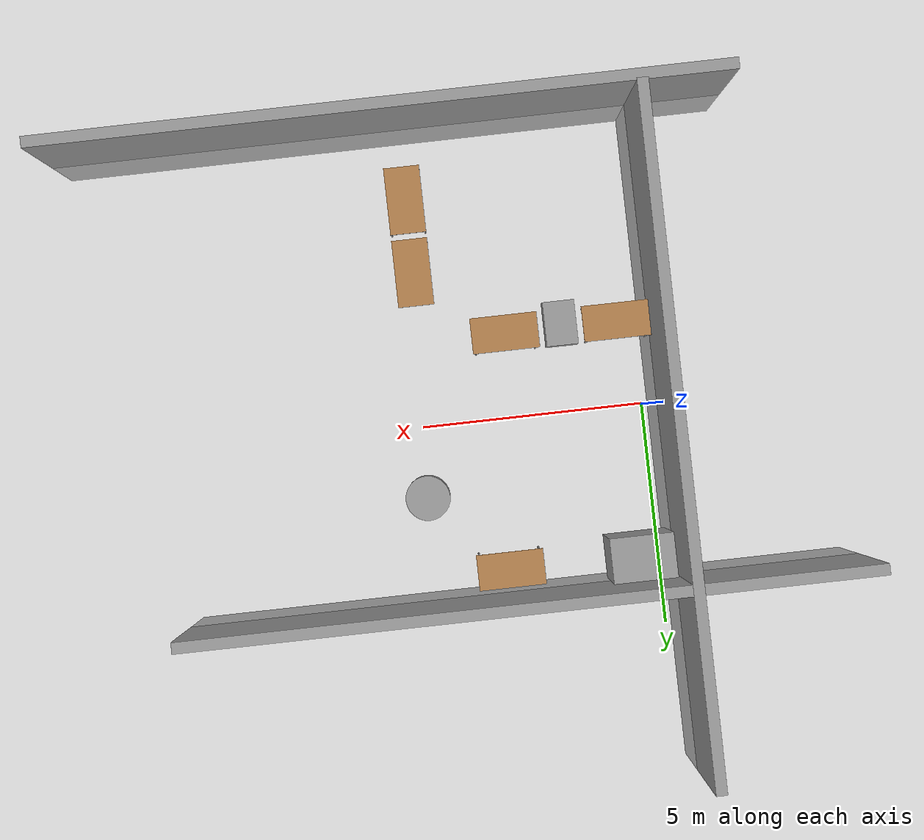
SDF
<sdf version="1.7">
 <world name="default">
  <light name="sun" type="directional">
   <pose>0 0 10 0 -0 0</pose>
   <diffuse>0.8 0.8 0.8 1</diffuse>
   <specular>0.2 0.2 0.2 1</specular>
   <attenuation>
    <range>1000</range>
    <constant>0.9</constant>
    <linear>0.01</linear>
    <quadratic>0.001</quadratic>
   </attenuation>
   <direction>-0.5 0.1 -0.9</direction>
   <spot><inner_angle>0</inner_angle><outer_angle>0</outer_angle><falloff>0</falloff></spot>
  </light>
  <model name="ground_plane">
   <static>1</static>
   <link name="link">
    <collision name="collision">
     <geometry><plane><normal>0 0 1</normal><size>100 100</size></plane></geometry>
     <surface><friction><ode><mu>100</mu><mu2>50</mu2></ode></friction></surface>
    </collision>
    <visual name="visual">
     <cast_shadows>0</cast_shadows>
     <geometry><plane><normal>0 0 1</normal><size>100 100</size></plane></geometry>
     <material>
      <script><uri>file://media/materials/scripts/gazebo.material</uri><name>Gazebo/Grey</name></script>
     </material>
    </visual>
   </link>
  </model>
  <gravity>0 0 -9.8</gravity>
  <magnetic_field>6e-06 2.3e-05 -4.2e-05</magnetic_field>
  <atmosphere type="adiabatic"/>
  <physics type="ode">
   <max_step_size>0.001</max_step_size>
   <real_time_factor>1</real_time_factor>
   <real_time_update_rate>1000</real_time_update_rate>
  </physics>
  <scene><ambient>0.4 0.4 0.4 1</ambient><background>0.7 0.7 0.7 1</background><shadows>1</shadows></scene>
  <audio><device>default</device></audio>
  <spherical_coordinates>
   <surface_model>EARTH_WGS84</surface_model>
   <latitude_deg>0</latitude_deg>
   <longitude_deg>0</longitude_deg>
   <elevation>0</elevation>
   <heading_deg>0</heading_deg>
  </spherical_coordinates>
  <model name="table">
   <static>1</static>
   <link name="link">
    <collision name="surface">
     <pose>0 0 1 0 -0 0</pose>
     <geometry><box><size>1.5 0.8 0.03</size></box></geometry>
     <surface><friction><ode><mu>0.6</mu><mu2>0.6</mu2></ode></friction></surface>
    </collision>
    <visual name="visual1">
     <pose>0 0 1 0 -0 0</pose>
     <geometry><box><size>1.5 0.8 0.03</size></box></geometry>
     <material>
      <script><uri>file://media/materials/scripts/gazebo.material</uri><name>Gazebo/Wood</name></script>
     </material>
    </visual>
    <collision name="front_left_leg">
     <pose>0.68 0.38 0.5 0 -0 0</pose>
     <geometry><cylinder><radius>0.02</radius><length>1</length></cylinder></geometry>
    </collision>
    <visual name="front_left_leg">
     <pose>0.68 0.38 0.5 0 -0 0</pose>
     <geometry><cylinder><radius>0.02</radius><length>1</length></cylinder></geometry>
     <material>
      <script><uri>file://media/materials/scripts/gazebo.material</uri><name>Gazebo/Grey</name></script>
     </material>
    </visual>
    <collision name="front_right_leg">
     <pose>0.68 -0.38 0.5 0 -0 0</pose>
     <geometry><cylinder><radius>0.02</radius><length>1</length></cylinder></geometry>
    </collision>
    <visual name="front_right_leg">
     <pose>0.68 -0.38 0.5 0 -0 0</pose>
     <geometry><cylinder><radius>0.02</radius><length>1</length></cylinder></geometry>
     <material>
      <script><uri>file://media/materials/scripts/gazebo.material</uri><name>Gazebo/Grey</name></script>
     </material>
    </visual>
    <collision name="back_right_leg">
     <pose>-0.68 -0.38 0.5 0 -0 0</pose>
     <geometry><cylinder><radius>0.02</radius><length>1</length></cylinder></geometry>
    </collision>
    <visual name="back_right_leg">
     <pose>-0.68 -0.38 0.5 0 -0 0</pose>
     <geometry><cylinder><radius>0.02</radius><length>1</length></cylinder></geometry>
     <material>
      <script><uri>file://media/materials/scripts/gazebo.material</uri><name>Gazebo/Grey</name></script>
     </material>
    </visual>
    <collision name="back_left_leg">
     <pose>-0.68 0.38 0.5 0 -0 0</pose>
     <geometry><cylinder><radius>0.02</radius><length>1</length></cylinder></geometry>
    </collision>
    <visual name="back_left_leg">
     <pose>-0.68 0.38 0.5 0 -0 0</pose>
     <geometry><cylinder><radius>0.02</radius><length>1</length></cylinder></geometry>
     <material>
      <script><uri>file://media/materials/scripts/gazebo.material</uri><name>Gazebo/Grey</name></script>
     </material>
    </visual>
   </link>
   <pose>0.44139 -1.91608 0 0 -0 0</pose>
  </model>
  <model name="table_clone">
   <static>1</static>
   <link name="link">
    <collision name="surface">
     <pose>0 0 1 0 -0 0</pose>
     <geometry><box><size>1.5 0.8 0.03</size></box></geometry>
     <surface><friction><ode><mu>0.6</mu><mu2>0.6</mu2></ode></friction></surface>
    </collision>
    <visual name="visual1">
     <pose>0 0 1 0 -0 0</pose>
     <geometry><box><size>1.5 0.8 0.03</size></box></geometry>
     <material>
      <script><uri>file://media/materials/scripts/gazebo.material</uri><name>Gazebo/Wood</name></script>
     </material>
    </visual>
    <collision name="front_left_leg">
     <pose>0.68 0.38 0.5 0 -0 0</pose>
     <geometry><cylinder><radius>0.02</radius><length>1</length></cylinder></geometry>
    </collision>
    <visual name="front_left_leg">
     <pose>0.68 0.38 0.5 0 -0 0</pose>
     <geometry><cylinder><radius>0.02</radius><length>1</length></cylinder></geometry>
     <material>
      <script><uri>file://media/materials/scripts/gazebo.material</uri><name>Gazebo/Grey</name></script>
     </material>
    </visual>
    <collision name="front_right_leg">
     <pose>0.68 -0.38 0.5 0 -0 0</pose>
     <geometry><cylinder><radius>0.02</radius><length>1</length></cylinder></geometry>
    </collision>
    <visual name="front_right_leg">
     <pose>0.68 -0.38 0.5 0 -0 0</pose>
     <geometry><cylinder><radius>0.02</radius><length>1</length></cylinder></geometry>
     <material>
      <script><uri>file://media/materials/scripts/gazebo.material</uri><name>Gazebo/Grey</name></script>
     </material>
    </visual>
    <collision name="back_right_leg">
     <pose>-0.68 -0.38 0.5 0 -0 0</pose>
     <geometry><cylinder><radius>0.02</radius><length>1</length></cylinder></geometry>
    </collision>
    <visual name="back_right_leg">
     <pose>-0.68 -0.38 0.5 0 -0 0</pose>
     <geometry><cylinder><radius>0.02</radius><length>1</length></cylinder></geometry>
     <material>
      <script><uri>file://media/materials/scripts/gazebo.material</uri><name>Gazebo/Grey</name></script>
     </material>
    </visual>
    <collision name="back_left_leg">
     <pose>-0.68 0.38 0.5 0 -0 0</pose>
     <geometry><cylinder><radius>0.02</radius><length>1</length></cylinder></geometry>
    </collision>
    <visual name="back_left_leg">
     <pose>-0.68 0.38 0.5 0 -0 0</pose>
     <geometry><cylinder><radius>0.02</radius><length>1</length></cylinder></geometry>
     <material>
      <script><uri>file://media/materials/scripts/gazebo.material</uri><name>Gazebo/Grey</name></script>
     </material>
    </visual>
   </link>
   <pose>2.94748 -1.91608 0 0 -0 0</pose>
  </model>
  <model name="unit_box">
   <pose>1.67802 -2.00808 0.5 0 -0 0</pose>
   <link name="link">
    <inertial>
     <mass>1</mass>
     <inertia>
      <ixx>0.166667</ixx>
      <ixy>0</ixy>
      <ixz>0</ixz>
      <iyy>0.166667</iyy>
      <iyz>0</iyz>
      <izz>0.166667</izz>
     </inertia>
    </inertial>
    <collision name="collision"><geometry><box><size>0.71325 1 0.66545</size></box></geometry></collision>
    <visual name="visual">
     <geometry><box><size>0.71325 1 0.66545</size></box></geometry>
     <material>
      <script><name>Gazebo/Grey</name><uri>file://media/materials/scripts/gazebo.material</uri></script>
     </material>
    </visual>
   </link>
  </model>
  <model name="unit_box_0">
   <pose>-0.479853 0.782243 0.5 0 -0 0</pose>
   <link name="link">
    <inertial>
     <mass>1</mass>
     <inertia>
      <ixx>0.166667</ixx>
      <ixy>0</ixy>
      <ixz>0</ixz>
      <iyy>0.166667</iyy>
      <iyz>0</iyz>
      <izz>0.166667</izz>
     </inertia>
    </inertial>
    <collision name="collision"><geometry><box><size>0.251662 15.3228 5.91896</size></box></geometry></collision>
    <visual name="visual">
     <geometry><box><size>0.251662 15.3228 5.91896</size></box></geometry>
     <material>
      <script><name>Gazebo/Grey</name><uri>file://media/materials/scripts/gazebo.material</uri></script>
     </material>
    </visual>
   </link>
  </model>
  <model name="unit_box_0_clone">
   <pose>3.11249 4.05805 0.5 0 0 -1.5708</pose>
   <link name="link">
    <inertial>
     <mass>1</mass>
     <inertia>
      <ixx>0.166667</ixx>
      <ixy>0</ixy>
      <ixz>0</ixz>
      <iyy>0.166667</iyy>
      <iyz>0</iyz>
      <izz>0.166667</izz>
     </inertia>
    </inertial>
    <collision name="collision"><geometry><box><size>0.251662 15.3227 5.91896</size></box></geometry></collision>
    <visual name="visual">
     <geometry><box><size>0.251662 15.3227 5.91896</size></box></geometry>
     <material>
      <script><name>Gazebo/Grey</name><uri>file://media/materials/scripts/gazebo.material</uri></script>
     </material>
    </visual>
   </link>
  </model>
  <model name="unit_box_0_clone_clone">
   <pose>5.10863 -6.95697 0.5 0 0 -1.5708</pose>
   <link name="link">
    <inertial>
     <mass>1</mass>
     <inertia>
      <ixx>0.166667</ixx>
      <ixy>0</ixy>
      <ixz>0</ixz>
      <iyy>0.166667</iyy>
      <iyz>0</iyz>
      <izz>0.166667</izz>
     </inertia>
    </inertial>
    <collision name="collision"><geometry><box><size>0.251662 15.3227 5.91896</size></box></geometry></collision>
    <visual name="visual">
     <geometry><box><size>0.251662 15.3227 5.91896</size></box></geometry>
     <material>
      <script><name>Gazebo/Grey</name><uri>file://media/materials/scripts/gazebo.material</uri></script>
     </material>
    </visual>
   </link>
  </model>
  <model name="unit_box_clone">
   <pose>0.496339 3.35459 1.07332 0 -0 0</pose>
   <link name="link">
    <inertial>
     <mass>1</mass>
     <inertia>
      <ixx>0.166667</ixx>
      <ixy>0</ixy>
      <ixz>0</ixz>
      <iyy>0.166667</iyy>
      <iyz>0</iyz>
      <izz>0.166667</izz>
     </inertia>
    </inertial>
    <collision name="collision"><geometry><box><size>1.41641 1 2.04162</size></box></geometry></collision>
    <visual name="visual">
     <geometry><box><size>1.41641 1 2.04162</size></box></geometry>
     <material>
      <script><name>Gazebo/Grey</name><uri>file://media/materials/scripts/gazebo.material</uri></script>
     </material>
    </visual>
   </link>
  </model>
  <model name="table_clone_clone">
   <static>1</static>
   <link name="link">
    <collision name="surface">
     <pose>0 0 1 0 -0 0</pose>
     <geometry><box><size>1.5 0.8 0.03</size></box></geometry>
     <surface><friction><ode><mu>0.6</mu><mu2>0.6</mu2></ode></friction></surface>
    </collision>
    <visual name="visual1">
     <pose>0 0 1 0 -0 0</pose>
     <geometry><box><size>1.5 0.8 0.03</size></box></geometry>
     <material>
      <script><uri>file://media/materials/scripts/gazebo.material</uri><name>Gazebo/Wood</name></script>
     </material>
    </visual>
    <collision name="front_left_leg">
     <pose>0.68 0.38 0.5 0 -0 0</pose>
     <geometry><cylinder><radius>0.02</radius><length>1</length></cylinder></geometry>
    </collision>
    <visual name="front_left_leg">
     <pose>0.68 0.38 0.5 0 -0 0</pose>
     <geometry><cylinder><radius>0.02</radius><length>1</length></cylinder></geometry>
     <material>
      <script><uri>file://media/materials/scripts/gazebo.material</uri><name>Gazebo/Grey</name></script>
     </material>
    </visual>
    <collision name="front_right_leg">
     <pose>0.68 -0.38 0.5 0 -0 0</pose>
     <geometry><cylinder><radius>0.02</radius><length>1</length></cylinder></geometry>
    </collision>
    <visual name="front_right_leg">
     <pose>0.68 -0.38 0.5 0 -0 0</pose>
     <geometry><cylinder><radius>0.02</radius><length>1</length></cylinder></geometry>
     <material>
      <script><uri>file://media/materials/scripts/gazebo.material</uri><name>Gazebo/Grey</name></script>
     </material>
    </visual>
    <collision name="back_right_leg">
     <pose>-0.68 -0.38 0.5 0 -0 0</pose>
     <geometry><cylinder><radius>0.02</radius><length>1</length></cylinder></geometry>
    </collision>
    <visual name="back_right_leg">
     <pose>-0.68 -0.38 0.5 0 -0 0</pose>
     <geometry><cylinder><radius>0.02</radius><length>1</length></cylinder></geometry>
     <material>
      <script><uri>file://media/materials/scripts/gazebo.material</uri><name>Gazebo/Grey</name></script>
     </material>
    </visual>
    <collision name="back_left_leg">
     <pose>-0.68 0.38 0.5 0 -0 0</pose>
     <geometry><cylinder><radius>0.02</radius><length>1</length></cylinder></geometry>
    </collision>
    <visual name="back_left_leg">
     <pose>-0.68 0.38 0.5 0 -0 0</pose>
     <geometry><cylinder><radius>0.02</radius><length>1</length></cylinder></geometry>
     <material>
      <script><uri>file://media/materials/scripts/gazebo.material</uri><name>Gazebo/Grey</name></script>
     </material>
    </visual>
   </link>
   <pose>4.84312 -3.48098 0 0 -0 1.5708</pose>
  </model>
  <model name="table_clone_clone_clone">
   <static>1</static>
   <link name="link">
    <collision name="surface">
     <pose>0 0 1 0 -0 0</pose>
     <geometry><box><size>1.5 0.8 0.03</size></box></geometry>
     <surface><friction><ode><mu>0.6</mu><mu2>0.6</mu2></ode></friction></surface>
    </collision>
    <visual name="visual1">
     <pose>0 0 1 0 -0 0</pose>
     <geometry><box><size>1.5 0.8 0.03</size></box></geometry>
     <material>
      <script><uri>file://media/materials/scripts/gazebo.material</uri><name>Gazebo/Wood</name></script>
     </material>
    </visual>
    <collision name="front_left_leg">
     <pose>0.68 0.38 0.5 0 -0 0</pose>
     <geometry><cylinder><radius>0.02</radius><length>1</length></cylinder></geometry>
    </collision>
    <visual name="front_left_leg">
     <pose>0.68 0.38 0.5 0 -0 0</pose>
     <geometry><cylinder><radius>0.02</radius><length>1</length></cylinder></geometry>
     <material>
      <script><uri>file://media/materials/scripts/gazebo.material</uri><name>Gazebo/Grey</name></script>
     </material>
    </visual>
    <collision name="front_right_leg">
     <pose>0.68 -0.38 0.5 0 -0 0</pose>
     <geometry><cylinder><radius>0.02</radius><length>1</length></cylinder></geometry>
    </collision>
    <visual name="front_right_leg">
     <pose>0.68 -0.38 0.5 0 -0 0</pose>
     <geometry><cylinder><radius>0.02</radius><length>1</length></cylinder></geometry>
     <material>
      <script><uri>file://media/materials/scripts/gazebo.material</uri><name>Gazebo/Grey</name></script>
     </material>
    </visual>
    <collision name="back_right_leg">
     <pose>-0.68 -0.38 0.5 0 -0 0</pose>
     <geometry><cylinder><radius>0.02</radius><length>1</length></cylinder></geometry>
    </collision>
    <visual name="back_right_leg">
     <pose>-0.68 -0.38 0.5 0 -0 0</pose>
     <geometry><cylinder><radius>0.02</radius><length>1</length></cylinder></geometry>
     <material>
      <script><uri>file://media/materials/scripts/gazebo.material</uri><name>Gazebo/Grey</name></script>
     </material>
    </visual>
    <collision name="back_left_leg">
     <pose>-0.68 0.38 0.5 0 -0 0</pose>
     <geometry><cylinder><radius>0.02</radius><length>1</length></cylinder></geometry>
    </collision>
    <visual name="back_left_leg">
     <pose>-0.68 0.38 0.5 0 -0 0</pose>
     <geometry><cylinder><radius>0.02</radius><length>1</length></cylinder></geometry>
     <material>
      <script><uri>file://media/materials/scripts/gazebo.material</uri><name>Gazebo/Grey</name></script>
     </material>
    </visual>
   </link>
   <pose>4.84312 -5.11117 0 0 -0 1.5708</pose>
  </model>
  <model name="unit_cylinder">
   <pose>5.05544 1.57361 0.5 0 -0 0</pose>
   <link name="link">
    <inertial>
     <mass>1</mass>
     <inertia><ixx>0.145833</ixx><ixy>0</ixy><ixz>0</ixz><iyy>0.145833</iyy><iyz>0</iyz><izz>0.125</izz></inertia>
    </inertial>
    <collision name="collision">
     <geometry><cylinder><radius>0.5</radius><length>1</length></cylinder></geometry>
    </collision>
    <visual name="visual">
     <geometry><cylinder><radius>0.5</radius><length>1</length></cylinder></geometry>
     <material>
      <script><name>Gazebo/Grey</name><uri>file://media/materials/scripts/gazebo.material</uri></script>
     </material>
    </visual>
   </link>
  </model>
  <model name="table_clone_clone_0">
   <static>1</static>
   <link name="link">
    <collision name="surface">
     <pose>0 0 1 0 -0 0</pose>
     <geometry><box><size>1.5 0.8 0.03</size></box></geometry>
     <surface><friction><ode><mu>0.6</mu><mu2>0.6</mu2></ode></friction></surface>
    </collision>
    <visual name="visual1">
     <pose>0 0 1 0 -0 0</pose>
     <geometry><box><size>1.5 0.8 0.03</size></box></geometry>
     <material>
      <script><uri>file://media/materials/scripts/gazebo.material</uri><name>Gazebo/Wood</name></script>
     </material>
    </visual>
    <collision name="front_left_leg">
     <pose>0.68 0.38 0.5 0 -0 0</pose>
     <geometry><cylinder><radius>0.02</radius><length>1</length></cylinder></geometry>
    </collision>
    <visual name="front_left_leg">
     <pose>0.68 0.38 0.5 0 -0 0</pose>
     <geometry><cylinder><radius>0.02</radius><length>1</length></cylinder></geometry>
     <material>
      <script><uri>file://media/materials/scripts/gazebo.material</uri><name>Gazebo/Grey</name></script>
     </material>
    </visual>
    <collision name="front_right_leg">
     <pose>0.68 -0.38 0.5 0 -0 0</pose>
     <geometry><cylinder><radius>0.02</radius><length>1</length></cylinder></geometry>
    </collision>
    <visual name="front_right_leg">
     <pose>0.68 -0.38 0.5 0 -0 0</pose>
     <geometry><cylinder><radius>0.02</radius><length>1</length></cylinder></geometry>
     <material>
      <script><uri>file://media/materials/scripts/gazebo.material</uri><name>Gazebo/Grey</name></script>
     </material>
    </visual>
    <collision name="back_right_leg">
     <pose>-0.68 -0.38 0.5 0 -0 0</pose>
     <geometry><cylinder><radius>0.02</radius><length>1</length></cylinder></geometry>
    </collision>
    <visual name="back_right_leg">
     <pose>-0.68 -0.38 0.5 0 -0 0</pose>
     <geometry><cylinder><radius>0.02</radius><length>1</length></cylinder></geometry>
     <material>
      <script><uri>file://media/materials/scripts/gazebo.material</uri><name>Gazebo/Grey</name></script>
     </material>
    </visual>
    <collision name="back_left_leg">
     <pose>-0.68 0.38 0.5 0 -0 0</pose>
     <geometry><cylinder><radius>0.02</radius><length>1</length></cylinder></geometry>
    </collision>
    <visual name="back_left_leg">
     <pose>-0.68 0.38 0.5 0 -0 0</pose>
     <geometry><cylinder><radius>0.02</radius><length>1</length></cylinder></geometry>
     <material>
      <script><uri>file://media/materials/scripts/gazebo.material</uri><name>Gazebo/Grey</name></script>
     </material>
    </visual>
   </link>
   <pose>3.37966 3.36311 0 0 -0 0</pose>
  </model>
 </world>
</sdf>
